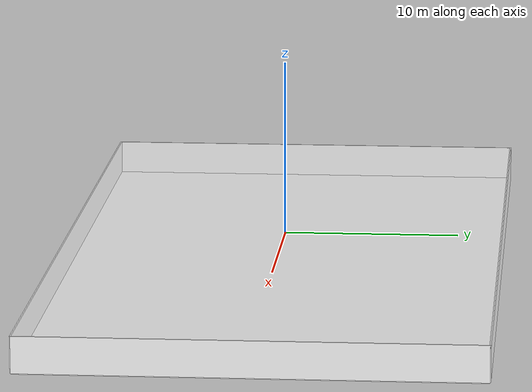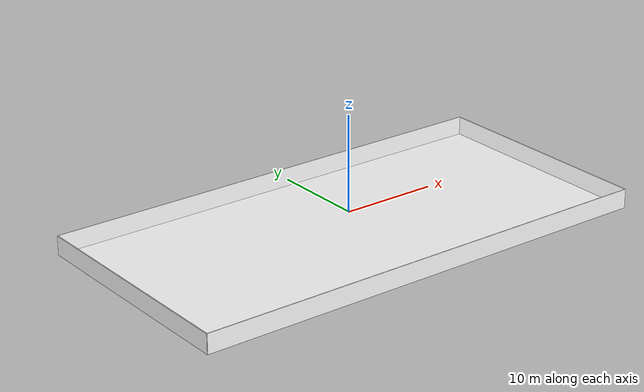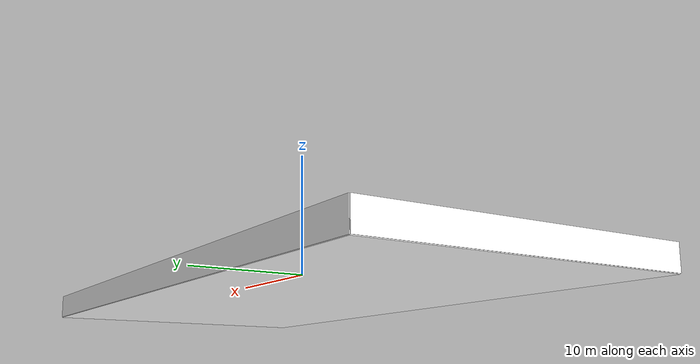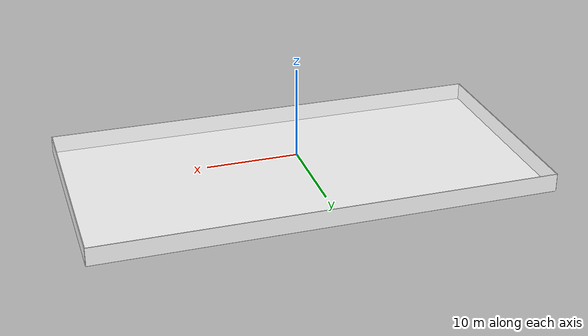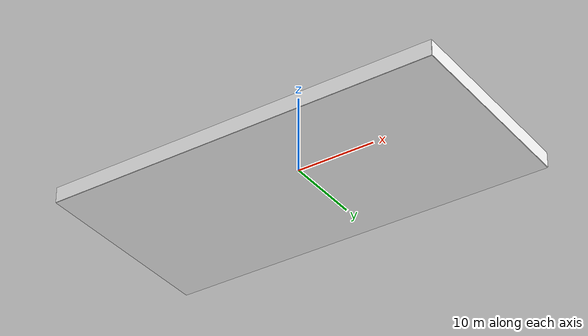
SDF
<?xml version="1.0" ?>

<sdf version="1.5">
  <model name="swimming_pool">
    <static>true</static>
    <link name="link">
      <visual name="ground">
        <cast_shadows>false</cast_shadows>
        <pose>0 0 -2 0 0 0</pose>
        <geometry>
          <box>
            <size>50 25 .1</size>
          </box>
        </geometry>
        <material>
          <ambient>1.0 1.0 1.0 1.0</ambient>
          <diffuse>1.0 1.0 1.0 1.0</diffuse>
          <pbr>
            <metal>
              <albedo_map>swimming_pool_tile.png</albedo_map>
              <roughness>0.1</roughness>
              <metalness>0.0</metalness>
            </metal>
          </pbr>
        </material>
      </visual>

      <collision name="ground">
        <pose>0 0 -2 0 0 0</pose>
        <geometry>
          <box>
            <size>50 25 .1</size>
          </box>
        </geometry>
      </collision>

      <visual name="surface">
        <cast_shadows>false</cast_shadows>
        <pose>0 0 0 0 0 0</pose>
        <geometry>
          <box>
            <size>50 25 .02</size>
          </box>
        </geometry>
        <material>
          <ambient>1.0 1.0 1.0 0.6</ambient>
          <diffuse>1.0 1.0 1.0 0.6</diffuse>
          <pbr>
            <metal>
              <albedo_map>static_water.png</albedo_map>
              <roughness>1.0</roughness>
              <metalness>0.0</metalness>
            </metal>
          </pbr>
        </material>
      </visual>

      <visual name="north">
        <cast_shadows>false</cast_shadows>
        <pose>25 0 -1 0 0 0</pose>
        <geometry>
          <box>
            <size>.1 25 2</size>
          </box>
        </geometry>
        <material>
          <ambient>1.0 1.0 1.0 1.0</ambient>
          <diffuse>1.0 1.0 1.0 1.0</diffuse>
          <pbr>
            <metal>
              <albedo_map>swimming_pool_tile.png</albedo_map>
              <roughness>0.1</roughness>
              <metalness>0.0</metalness>
            </metal>
          </pbr>
        </material>
      </visual>

      <visual name="south">
        <cast_shadows>false</cast_shadows>
        <pose>-25 0 -1 0 0 0</pose>
        <geometry>
          <box>
            <size>.1 25 2</size>
          </box>
        </geometry>
        <material>
          <ambient>1.0 1.0 1.0 1.0</ambient>
          <diffuse>1.0 1.0 1.0 1.0</diffuse>
          <pbr>
            <metal>
              <albedo_map>swimming_pool_tile.png</albedo_map>
              <roughness>0.1</roughness>
              <metalness>0.0</metalness>
            </metal>
          </pbr>
        </material>
      </visual>

      <visual name="east">
        <cast_shadows>false</cast_shadows>
        <pose>0 -12.5 -1 0 0 0</pose>
        <geometry>
          <box>
            <size>50 .1 2</size>
          </box>
        </geometry>
        <material>
          <ambient>1.0 1.0 1.0 1.0</ambient>
          <diffuse>1.0 1.0 1.0 1.0</diffuse>
          <pbr>
            <metal>
              <albedo_map>swimming_pool_tile.png</albedo_map>
              <roughness>0.1</roughness>
              <metalness>0.0</metalness>
            </metal>
          </pbr>
        </material>
      </visual>

      <visual name="west">
        <cast_shadows>false</cast_shadows>
        <pose>0 12.5 -1 0 0 0</pose>
        <geometry>
          <box>
            <size>50 .1 2</size>
          </box>
        </geometry>
        <material>
          <ambient>1.0 1.0 1.0 1.0</ambient>
          <diffuse>1.0 1.0 1.0 1.0</diffuse>
          <pbr>
            <metal>
              <albedo_map>swimming_pool_tile.png</albedo_map>
              <roughness>0.1</roughness>
              <metalness>0.0</metalness>
            </metal>
          </pbr>
        </material>
      </visual>
    </link>
  </model>
</sdf>
